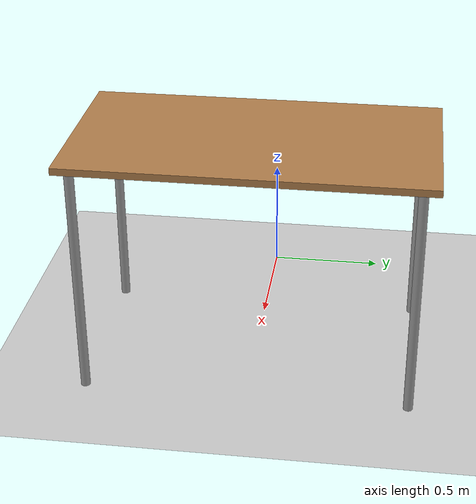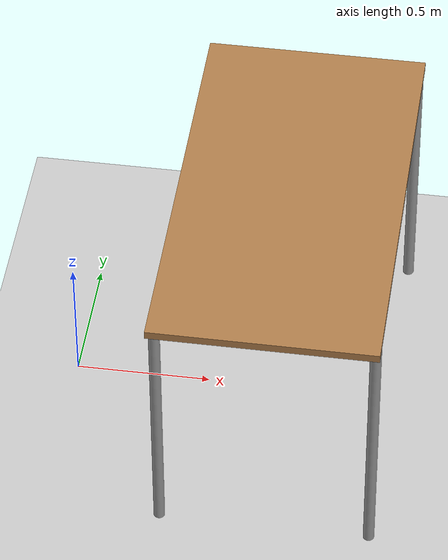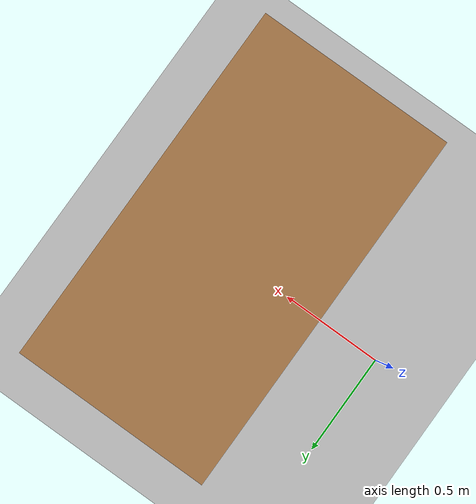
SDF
<sdf version="1.4">
 <world name="default">
  <include><uri>model://table</uri><pose>0.8 0.0 0.0 0.0 0.0 1.5707</pose></include>
  <include><uri>model://ground_plane</uri></include>
  <include><uri>model://sun</uri></include>
  <physics type="ode">
   <real_time_update_rate>1000.0</real_time_update_rate>
   <gravity>0.0 0.0 -9.81</gravity>
  </physics>
 </world>
</sdf>

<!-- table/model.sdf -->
<sdf version="1.5">
  <model name="table">
    <static>true</static>
    <link name="link">
      <collision name="surface">
        <pose>0 0 1.0 0 0 0</pose>
        <geometry>
          <box>
            <size>1.5 0.8 0.03</size>
          </box>
        </geometry>
        <surface>
          <friction>
            <ode>
              <mu>0.6</mu>
              <mu2>0.6</mu2>
            </ode>
          </friction>
        </surface>
      </collision>
      <visual name="visual1">
        <pose>0 0 1.0 0 0 0</pose>
        <geometry>
          <box>
            <size>1.5 0.8 0.03</size>
          </box>
        </geometry>
        <material>
          <script>
            <uri>model://media/materials/scripts/gazebo.material</uri>
            <name>Gazebo/Wood</name>
          </script>
        </material>
      </visual>
      <collision name="front_left_leg">
        <pose>0.68 0.38 0.5 0 0 0</pose>
        <geometry>
          <cylinder>
            <radius>0.02</radius>
            <length>1.0</length>
          </cylinder>
        </geometry>
      </collision>
      <visual name="front_left_leg">
        <pose>0.68 0.38 0.5 0 0 0</pose>
        <geometry>
          <cylinder>
            <radius>0.02</radius>
            <length>1.0</length>
          </cylinder>
        </geometry>
        <material>
          <script>
            <uri>model://media/materials/scripts/gazebo.material</uri>
            <name>Gazebo/Grey</name>
          </script>
        </material>
      </visual>
      <collision name="front_right_leg">
        <pose>0.68 -0.38 0.5 0 0 0</pose>
        <geometry>
          <cylinder>
            <radius>0.02</radius>
            <length>1.0</length>
          </cylinder>
        </geometry>
      </collision>
      <visual name="front_right_leg">
        <pose>0.68 -0.38 0.5 0 0 0</pose>
        <geometry>
          <cylinder>
            <radius>0.02</radius>
            <length>1.0</length>
          </cylinder>
        </geometry>
        <material>
          <script>
            <uri>model://media/materials/scripts/gazebo.material</uri>
            <name>Gazebo/Grey</name>
          </script>
        </material>
      </visual>
      <collision name="back_right_leg">
        <pose>-0.68 -0.38 0.5 0 0 0</pose>
        <geometry>
          <cylinder>
            <radius>0.02</radius>
            <length>1.0</length>
          </cylinder>
        </geometry>
      </collision>
      <visual name="back_right_leg">
        <pose>-0.68 -0.38 0.5 0 0 0</pose>
        <geometry>
          <cylinder>
            <radius>0.02</radius>
            <length>1.0</length>
          </cylinder>
        </geometry>
        <material>
          <script>
            <uri>model://media/materials/scripts/gazebo.material</uri>
            <name>Gazebo/Grey</name>
          </script>
        </material>
      </visual>
      <collision name="back_left_leg">
        <pose>-0.68 0.38 0.5 0 0 0</pose>
        <geometry>
          <cylinder>
            <radius>0.02</radius>
            <length>1.0</length>
          </cylinder>
        </geometry>
      </collision>
      <visual name="back_left_leg">
        <pose>-0.68 0.38 0.5 0 0 0</pose>
        <geometry>
          <cylinder>
            <radius>0.02</radius>
            <length>1.0</length>
          </cylinder>
        </geometry>
        <material>
          <script>
            <uri>model://media/materials/scripts/gazebo.material</uri>
            <name>Gazebo/Grey</name>
          </script>
        </material>
      </visual>
    </link>
  </model>
</sdf>
